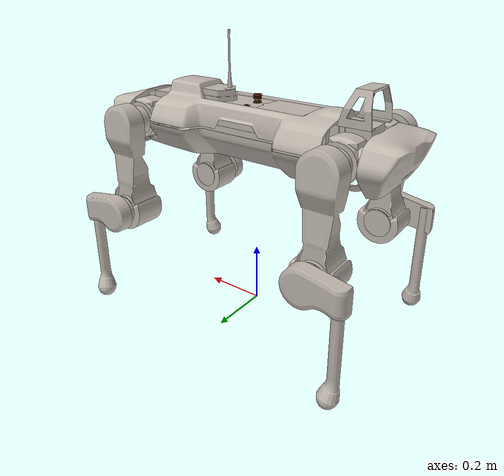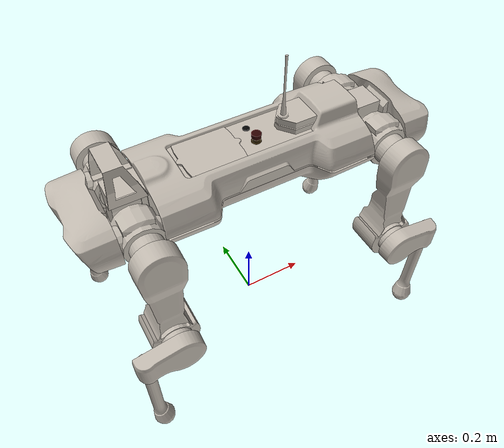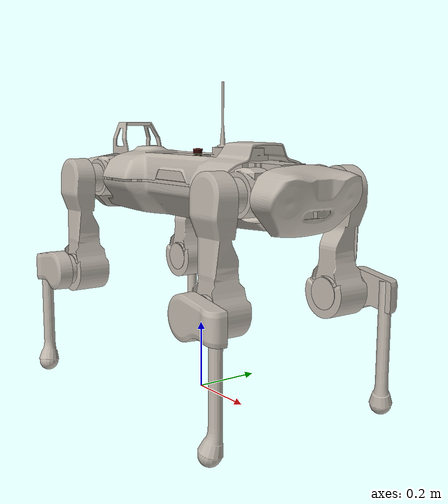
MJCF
<mujoco model="anymal_c">
  <compiler angle="radian" meshdir="assets" texturedir="assets" autolimits="true"/>

 <custom>
    <numeric data="4" name="max_contact_points"/>
    <numeric data="25" name="max_geom_pairs"/>
 </custom>
  <option iterations="5" ls_iterations="5" timestep="0.004" integrator="Euler">
    <flag eulerdamp="disable"/>
  </option>

  <default>
    <material specular="0" shininess="0.25"/>
    <default class="anymal_c">
      <joint damping="1"/>
      <default class="visual">
        <geom type="mesh" contype="0" conaffinity="0" group="2"/>
        <default class="visual_zflip">
          <geom quat="0 0 0 1"/>
        </default>
      </default>
      <default class="collision">
         <geom group="3"/>
        <default class="foot">
          <geom type="sphere" size="0.03" pos="0 0 0.02325" solimp="0.9 .95 0.023" contype="1" conaffinity="2" />
        </default>
      </default>
      <default class="affine">
        <position kp="100" ctrlrange="-6.28 6.28" forcerange="-80 80"/>
      </default>
    </default>
  </default>

  <asset>
    <material name="black_plastic" rgba="0.007 0.007 0.007 1"/>
    <material name="green" rgba="0.052 0.178 0.033 1"/>
    <material name="red" rgba="0.178 0.006 0.005 1"/>
    <material name="yellow" rgba="0.178 0.119 0.006 1"/>
    <material name="lwl" rgba="0.8 0.8 0.8 1"/>
    <material name="base" texture="base"/>
    <material name="top_shell" texture="top_shell"/>
    <material name="bottom_shell" texture="bottom_shell"/>
    <material name="hip_l" texture="hip_l"/>
    <material name="thigh" texture="thigh"/>
    <material name="shank_l" texture="shank_l"/>
    <material name="foot" texture="foot"/>
    <material name="hip_r" texture="hip_r"/>
    <material name="shank" texture="shank_r"/>
    <material name="hatch" texture="hatch"/>
    <material name="remote" texture="remote"/>
    <material name="handle" texture="handle"/>
    <material name="face" texture="face"/>
    <material name="depth_camera" texture="depth_camera"/>
    <material name="wide_angle_camera" texture="wide_angle_camera"/>
    <material name="battery" texture="battery"/>
    <material name="lidar_cage" texture="lidar_cage"/>
    <material name="lidar" texture="lidar"/>
    <material name="drive" texture="drive"/>

    <texture type="2d" name="base" file="base.png"/>
    <texture type="2d" name="top_shell" file="top_shell.png"/>
    <texture type="2d" name="bottom_shell" file="bottom_shell.png"/>
    <texture type="2d" name="remote" file="remote.png"/>
    <texture type="2d" name="hatch" file="hatch.png"/>
    <texture type="2d" name="handle" file="handle.png"/>
    <texture type="2d" name="face" file="face.png"/>
    <texture type="2d" name="battery" file="battery.png"/>
    <texture type="2d" name="lidar_cage" file="lidar_cage.png"/>
    <texture type="2d" name="depth_camera" file="depth_camera.png"/>
    <texture type="2d" name="wide_angle_camera" file="wide_angle_camera.png"/>
    <texture type="2d" name="lidar" file="lidar.png"/>
    <texture type="2d" name="drive" file="drive.png"/>
    <texture type="2d" name="hip_l" file="hip_l.png"/>
    <texture type="2d" name="shank_l" file="shank_l.png"/>
    <texture type="2d" name="foot" file="foot.png"/>
    <texture type="2d" name="thigh" file="thigh.png"/>
    <texture type="2d" name="shank_r" file="shank_r.png"/>
    <texture type="2d" name="hip_r" file="hip_r.png"/>

    <mesh file="base_0.obj"/>
    <mesh file="base_1.obj"/>
    <mesh file="base_2.obj"/>
    <mesh file="base_3.obj"/>
    <mesh file="base_4.obj"/>
    <mesh file="base_5.obj"/>
    <mesh file="top_shell.obj"/>
    <mesh file="bottom_shell.obj"/>
    <mesh file="remote.obj"/>
    <mesh file="handle.obj"/>
    <mesh file="face.obj"/>
    <mesh file="wide_angle_camera.obj"/>
    <mesh file="depth_camera.obj"/>
    <mesh file="battery.obj"/>
    <mesh file="lidar_cage.obj"/>
    <mesh file="lidar.obj"/>
    <mesh file="drive.obj"/>
    <mesh file="hip_l.obj"/>
    <mesh file="thigh.obj"/>
    <mesh file="shank_l.obj"/>
    <mesh file="foot.obj"/>
    <mesh file="hip_r.obj"/>
    <mesh file="hatch.obj"/>
    <mesh file="shank_r.obj"/>
  </asset>

  <worldbody>
    <body name="base" pos="0 0 0.62" quat="0 0 0 1" childclass="anymal_c">
      <camera name="track" pos="0 -2.5 0" xyaxes="1 0 0 0 1 5" mode="trackcom"/>
      <freejoint/>
      <inertial mass="19.2035" pos="0.0025 0 0.0502071" quat="0.5 0.5 0.5 0.5" diaginertia="0.639559 0.624031 0.217374"/>
      <geom mesh="base_0" material="green" class="visual"/>
      <geom mesh="base_1" material="yellow" class="visual"/>
      <geom mesh="base_2" material="red" class="visual"/>
      <geom mesh="base_3" material="black_plastic" class="visual"/>
      <geom mesh="base_4" material="lwl" class="visual"/>
      <geom mesh="base_5" material="base" class="visual"/>
      <geom material="top_shell" mesh="top_shell" class="visual"/>
      <geom material="bottom_shell" mesh="bottom_shell" class="visual"/>
      <geom material="remote" mesh="remote" class="visual"/>
      <geom material="handle" mesh="handle" class="visual"/>
      <geom pos="0.4145 0 0" material="face" mesh="face" class="visual"/>
      <geom pos="-0.4145 0 0" material="face" mesh="face" class="visual_zflip"/>
      <geom material="battery" mesh="battery" class="visual"/>
      <geom pos="0.116 0 0.073" material="hatch" mesh="hatch" class="visual"/>
      <site name="imu" pos="0 0 0 "/>
      <body name="LF_HIP" pos="0.2999 0.104 0" quat="0.258819 0.965926 0 0">
        <inertial mass="2.781" pos="0.0566606 -0.015294 -0.00829784" quat="-0.127978 0.709783 -0.135278 0.679359"
          diaginertia="0.00585729 0.00491868 0.00329081"/>
        <joint name="LF_HAA" axis="1 0 0" range="-0.72 0.49"/>
        <geom quat="0.258819 -0.965926 0 0" material="hip_l" mesh="hip_l" class="visual"/>
        <geom pos="0.0599 -0.0725816 -0.041905" quat="0.183013 -0.683013 0.683013 0.183013" material="drive"
          mesh="drive" class="visual"/>
        <body name="LF_THIGH" pos="0.0599 -0.0725816 -0.041905" quat="0.183013 -0.683013 0.683013 0.183013">
          <inertial mass="3.071" pos="0.0308147 4.64995e-05 -0.245696" quat="0.993166 -0.00515309 -0.0806592 0.0841972"
            diaginertia="0.03025 0.0298943 0.00418465"/>
          <joint name="LF_HFE" axis="1 0 0" range="-9.42478 9.42478"/>
          <geom quat="1 0 0 -1" material="thigh" mesh="thigh" class="visual"/>
          <geom pos="0.1003 0 -0.285" material="drive" mesh="drive" class="visual"/>
          <body name="LF_SHANK" pos="0.1003 0 -0.285">
            <inertial mass="0.58842" pos="0.005462 -0.0612528 -0.0806598"
              quat="0.992934 -0.115904 -0.00105487 -0.0254421" diaginertia="0.0101637 0.00923838 0.00111927"/>
            <joint name="LF_KFE" axis="1 0 0" range="-9.42478 9.42478"/>
            <geom quat="1 0 0 -1" material="shank_l" mesh="shank_l" class="visual"/>
            <geom pos="0.01305 -0.08795 -0.33797" quat="0.382683 0 0 -0.92388" material="foot" mesh="foot"
              class="visual"/>
            <geom name="FL" class="foot" pos="0.01305 -0.08795 -0.31547"/>
            <site name="FL_foot" pos="0.01305 -0.08795 -0.31547"/>
          </body>
        </body>
      </body>
      <body name="RF_HIP" pos="0.2999 -0.104 0" quat="0.258819 -0.965926 0 0">
        <inertial mass="2.781" pos="0.0567633 0.015294 -0.00829784" quat="0.13524 0.679072 0.127985 0.710065"
          diaginertia="0.00585928 0.0049205 0.00329064"/>
        <joint name="RF_HAA" axis="1 0 0" range="-0.49 0.72"/>
        <geom quat="0.258819 0.965926 0 0" material="hip_r" mesh="hip_r" class="visual"/>
        <geom pos="0.0599 0.0725816 -0.041905" quat="0.183013 0.683013 0.683013 -0.183013" material="drive" mesh="drive"
          class="visual"/>
        <body name="RF_THIGH" pos="0.0599 0.0725816 -0.041905" quat="0.183013 0.683013 0.683013 -0.183013">
          <inertial mass="3.071" pos="0.0308147 4.64995e-05 -0.245696" quat="0.992775 -0.00512735 -0.0806685 0.0886811"
            diaginertia="0.0302511 0.0298933 0.0041845"/>
          <joint name="RF_HFE" axis="-1 0 0" range="-9.42478 9.42478"/>
          <geom quat="1 0 0 -1" material="thigh" mesh="thigh" class="visual"/>
          <geom pos="0.1003 0 -0.285" material="drive" mesh="drive" class="visual"/>
          <body name="RF_SHANK" pos="0.1003 0 -0.285">
            <inertial mass="0.58842" pos="0.005462 0.0612528 -0.0806598" quat="0.992934 0.115904 -0.00105487 0.0254421"
              diaginertia="0.0101637 0.00923838 0.00111927"/>
            <joint name="RF_KFE" axis="-1 0 0" range="-9.42478 9.42478"/>
            <geom quat="1 0 0 1" material="shank" mesh="shank_r" class="visual"/>
            <geom pos="0.01305 0.08795 -0.33797" quat="0.382683 0 0 0.92388" material="foot" mesh="foot" class="visual"/>
            <geom name="FR" class="foot" pos="0.01305 0.08795 -0.31547"/>
            <site name="FR_foot" pos="0.01305 0.08795 -0.31547"/>
          </body>
        </body>
      </body>
      <body name="LH_HIP" pos="-0.2999 0.104 0" quat="0 0 0.965926 -0.258819">
        <inertial mass="2.781" pos="0.0567633 0.015294 -0.00829784" quat="0.13524 0.679072 0.127985 0.710065"
          diaginertia="0.00585928 0.0049205 0.00329064"/>
        <joint name="LH_HAA" axis="-1 0 0" range="-0.72 0.49"/>
        <geom quat="-0.258819 -0.965926 0 0" material="hip_r" mesh="hip_r" class="visual"/>
        <geom pos="0.0599 0.0725816 -0.041905" quat="0.183013 0.683013 0.683013 -0.183013" material="drive" mesh="drive"
          class="visual"/>
        <body name="LH_THIGH" pos="0.0599 0.0725816 -0.041905" quat="0.183013 0.683013 0.683013 -0.183013">
          <inertial mass="3.071" pos="0.0308147 4.64995e-05 -0.245696" quat="0.992775 -0.00512735 -0.0806685 0.0886811"
            diaginertia="0.0302511 0.0298933 0.0041845"/>
          <joint name="LH_HFE" axis="1 0 0" range="-9.42478 9.42478"/>
          <geom quat="1 0 0 -1" material="thigh" mesh="thigh" class="visual"/>
          <geom pos="0.1003 0 -0.285" material="drive" mesh="drive" class="visual"/>
          <body name="LH_SHANK" pos="0.1003 0 -0.285">
            <inertial mass="0.58842" pos="0.005462 0.0612528 -0.0806598" quat="0.992934 0.115904 -0.00105487 0.0254421"
              diaginertia="0.0101637 0.00923838 0.00111927"/>
            <joint name="LH_KFE" axis="1 0 0" range="-9.42478 9.42478"/>
            <geom quat="-1 0 0 -1" material="shank" mesh="shank_r" class="visual"/>
            <geom pos="0.01305 0.08795 -0.33797" quat="-0.382683 0 0 -0.92388" material="foot" mesh="foot"
              class="visual"/>
            <geom name="RL" class="foot" pos="0.01305 0.08795 -0.31547"/>
            <site name="RL_foot" pos="0.01305 0.08795 -0.31547"/>
          </body>
        </body>
      </body>
      <body name="RH_HIP" pos="-0.2999 -0.104 0" quat="0 0 -0.965926 -0.258819">
        <inertial mass="2.781" pos="0.0566606 -0.015294 -0.00829784" quat="-0.127978 0.709783 -0.135278 0.679359"
          diaginertia="0.00585729 0.00491868 0.00329081"/>
        <joint name="RH_HAA" axis="-1 0 0" range="-0.49 0.72"/>
        <geom quat="-0.258819 0.965926 0 0" material="hip_l" mesh="hip_l" class="visual"/>
        <geom pos="0.0599 -0.0725816 -0.041905" quat="-0.183013 0.683013 -0.683013 -0.183013" material="drive"
          mesh="drive" class="visual"/>
        <body name="RH_THIGH" pos="0.0599 -0.0725816 -0.041905" quat="-0.183013 0.683013 -0.683013 -0.183013">
          <inertial mass="3.071" pos="0.0308147 4.64995e-05 -0.245696" quat="0.993166 -0.00515309 -0.0806592 0.0841972"
            diaginertia="0.03025 0.0298943 0.00418465"/>
          <joint name="RH_HFE" axis="-1 0 0" range="-9.42478 9.42478"/>
          <geom quat="1 0 0 -1" material="thigh" mesh="thigh" class="visual"/>
          <geom pos="0.1003 0 -0.285" material="drive" mesh="drive" class="visual"/>
          <body name="RH_SHANK" pos="0.1003 0 -0.285">
            <inertial mass="0.58842" pos="0.005462 -0.0612528 -0.0806598"
              quat="0.992934 -0.115904 -0.00105487 -0.0254421" diaginertia="0.0101637 0.00923838 0.00111927"/>
            <joint name="RH_KFE" axis="-1 0 0" range="-9.42478 9.42478"/>
            <geom quat="1 0 0 -1" material="shank_l" mesh="shank_l" class="visual"/>
            <geom pos="0.01305 -0.08795 -0.33797" quat="0.382683 0 0 -0.92388" material="foot" mesh="foot"
              class="visual"/>
            <geom name="RR" class="foot" pos="0.01305 -0.08795 -0.31547"/>
            <site name="RR_foot" pos="0.01305 -0.08795 -0.31547"/>
          </body>
        </body>
      </body>
    </body>
  </worldbody>

    <sensor>
    <gyro site="imu" name="gyro"/>
    <accelerometer site="imu" name="accelerometer"/>
    <framequat objtype="site" objname="imu" name="orientation"/>
    <framepos objtype="site" objname="imu" name="global_position"/>
    <framelinvel objtype="site" objname="imu" name="global_linvel"/>
    <frameangvel objtype="site" objname="imu" name="global_angvel"/>
    <!-- returns local velocity of robot -->
    <velocimeter site="imu" name="local_linvel"/>
    <framezaxis objtype="site" objname="imu" name="upvector"/>
    <framepos objtype="site" objname="FR_foot" name="FR_pos" reftype="site" refname="imu"/>
    <framepos objtype="site" objname="FL_foot" name="FL_pos" reftype="site" refname="imu"/>
    <framepos objtype="site" objname="RR_foot" name="RR_pos" reftype="site" refname="imu"/>
    <framepos objtype="site" objname="RL_foot" name="RL_pos" reftype="site" refname="imu"/>
    <framelinvel objtype="site" objname="FR_foot" name="FR_foot_global_linvel"/>
    <framelinvel objtype="site" objname="FL_foot" name="FL_foot_global_linvel"/>
    <framelinvel objtype="site" objname="RR_foot" name="RR_foot_global_linvel"/>
    <framelinvel objtype="site" objname="RL_foot" name="RL_foot_global_linvel"/>
    <contact name="FR_floor_found" geom1="FR" reduce="mindist" num="1" data="found"/>
    <contact name="FL_floor_found" geom1="FL" reduce="mindist" num="1" data="found"/>
    <contact name="RR_floor_found" geom1="RR" reduce="mindist" num="1" data="found"/>
    <contact name="RL_floor_found" geom1="RL" reduce="mindist" num="1" data="found"/>
  </sensor>

  <actuator>
    <position class="affine" joint="LF_HAA" name="LF_HAA"/>
    <position class="affine" joint="LF_HFE" name="LF_HFE"/>
    <position class="affine" joint="LF_KFE" name="LF_KFE"/>
    <position class="affine" joint="RF_HAA" name="RF_HAA"/>
    <position class="affine" joint="RF_HFE" name="RF_HFE"/>
    <position class="affine" joint="RF_KFE" name="RF_KFE"/>
    <position class="affine" joint="LH_HAA" name="LH_HAA"/>
    <position class="affine" joint="LH_HFE" name="LH_HFE"/>
    <position class="affine" joint="LH_KFE" name="LH_KFE"/>
    <position class="affine" joint="RH_HAA" name="RH_HAA"/>
    <position class="affine" joint="RH_HFE" name="RH_HFE"/>
    <position class="affine" joint="RH_KFE" name="RH_KFE"/>
  </actuator>

  <!-- A higher standing position -->
  <keyframe>
    <key name="home"
      qpos="0.0 0.0 0.56 1.0 0.0 0.0 0.0 0.0 0.5235987755982988 -0.7853981 0.0 0.5235987755982988 -0.7853981 0.0 -0.5235987755982988 0.7853981 0.0 -0.5235987755982988 0.7853981"/>
  </keyframe>
</mujoco>
